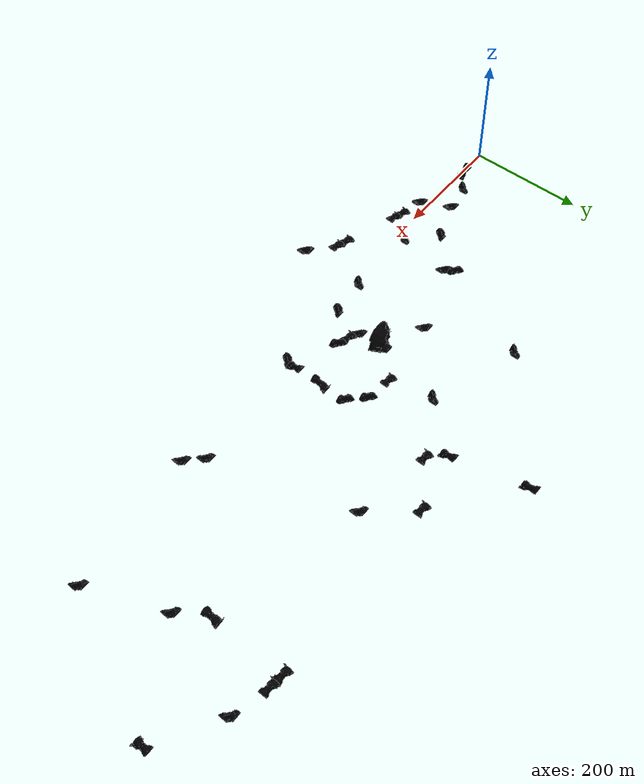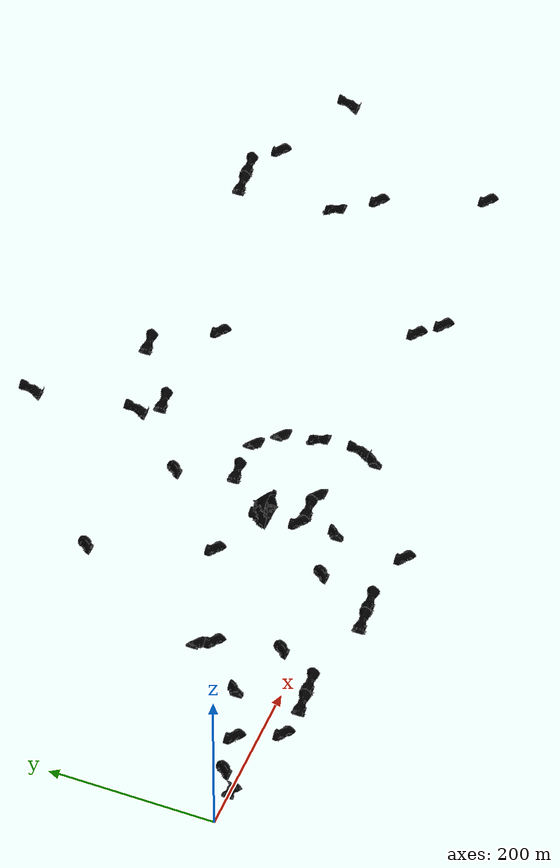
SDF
<sdf version="1.6">
 <world name="cave_circuit_practice_03">
  <plugin name="ros_interface_plugin" filename="librotors_gazebo_ros_interface_plugin.so"/>
  <physics name="1ms" type="ode">
   <max_step_size>0.004</max_step_size>
   <real_time_factor>1.0</real_time_factor>
  </physics>
  <scene>
   <ambient>150 150 150 255</ambient>
   <background>250 250 250 255</background>
   <grid>true</grid>
   <origin_visual>true</origin_visual>
  </scene>
  <include>
   <static>true</static>
   <name>tile_3</name>
   <pose>75 25 -10 0 -0 3.14159</pose>
   <uri>model://Cave Corner 02 Type B</uri>
  </include>
  <include>
   <static>true</static>
   <name>tile_4</name>
   <pose>50 0 -10 0 0 -1.5708</pose>
   <uri>model://Cave Elevation Lights Type B</uri>
  </include>
  <include>
   <static>true</static>
   <name>tile_13</name>
   <pose>200 -25 -10 0 -0 1.5708</pose>
   <uri>model://Cave Elevation Type B</uri>
  </include>
  <include>
   <static>true</static>
   <name>tile_15</name>
   <pose>200 50 -10 0 0 -0</pose>
   <uri>model://Cave Corner 02 Lights Type B</uri>
  </include>
  <include>
   <static>true</static>
   <name>tile_16</name>
   <pose>125 25 -10 0 0 -1.5708</pose>
   <uri>model://Cave Corner 02 Type B</uri>
  </include>
  <include>
   <static>true</static>
   <name>tile_19</name>
   <pose>150 -25 -10 0 0 -1.5708</pose>
   <uri>model://Cave Corner 02 Lights Type B</uri>
  </include>
  <include>
   <static>true</static>
   <name>tile_20</name>
   <pose>225 -25 0 0 -0 1.5708</pose>
   <uri>model://Cave Elevation Lights Type B</uri>
  </include>
  <include>
   <static>true</static>
   <name>tile_24</name>
   <pose>250 25 10 0 -0 3.14159</pose>
   <uri>model://Cave Corner 02 Lights Type B</uri>
  </include>
  <include>
   <static>true</static>
   <name>tile_34</name>
   <pose>325 -50 10 0 -0 1.5708</pose>
   <uri>model://Cave Elevation Type B</uri>
  </include>
  <include>
   <static>true</static>
   <name>tile_35</name>
   <pose>350 -50 20 0 -0 1.5708</pose>
   <uri>model://Cave Elevation Type B</uri>
  </include>
  <include>
   <static>true</static>
   <name>tile_40</name>
   <pose>250 100 -10 0 0 -1.5708</pose>
   <uri>model://Cave Corner 02 Lights Type B</uri>
  </include>
  <include>
   <static>true</static>
   <name>tile_41</name>
   <pose>250 125 -10 0 -0 1.5708</pose>
   <uri>model://Cave Corner 02 Type B</uri>
  </include>
  <include>
   <static>true</static>
   <name>tile_45</name>
   <pose>400 -75 50 0 0 -1.5708</pose>
   <uri>model://Cave Corner 02 Type B</uri>
  </include>
  <include>
   <static>true</static>
   <name>tile_49</name>
   <pose>375 25 10 0 -0 3.14159</pose>
   <uri>model://Cave Corner 02 Lights Type B</uri>
  </include>
  <include>
   <static>true</static>
   <name>tile_53</name>
   <pose>450 25 10 0 0 -0</pose>
   <uri>model://Cave Corner 02 Lights Type B</uri>
  </include>
  <include>
   <static>true</static>
   <name>tile_58</name>
   <pose>500 75 10 0 -0 1.57079</pose>
   <uri>model://Cave Corner 02 Lights Type B</uri>
  </include>
  <include>
   <static>true</static>
   <name>tile_59</name>
   <pose>475 75 0 0 -0 1.5708</pose>
   <uri>model://Cave Elevation Type B</uri>
  </include>
  <include>
   <static>true</static>
   <name>tile_63</name>
   <pose>450 75 0 0 0 -1.5708</pose>
   <uri>model://Cave Corner 02 Lights Type B</uri>
  </include>
  <include>
   <static>true</static>
   <name>tile_65</name>
   <pose>450 125 0 0 0 -1.5708</pose>
   <uri>model://Cave Cavern Split 02 Type B</uri>
  </include>
  <include>
   <static>true</static>
   <name>tile_71</name>
   <pose>500 175 0 0 -0 1.5708</pose>
   <uri>model://Cave Elevation Type B</uri>
  </include>
  <include>
   <static>true</static>
   <name>tile_74</name>
   <pose>575 25 10 0 -0 0</pose>
   <uri>model://Cave Corner 02 Type B</uri>
  </include>
  <include>
   <static>true</static>
   <name>tile_75</name>
   <pose>550 175 10 0 -0 1.5708</pose>
   <uri>model://Cave Corner 02 Type B</uri>
  </include>
  <include>
   <static>true</static>
   <name>tile_76</name>
   <pose>575 150 10 0 -0 1.5708</pose>
   <uri>model://Cave Corner 02 Type B</uri>
  </include>
  <include>
   <static>true</static>
   <name>tile_79</name>
   <pose>575 100 10 0 0 -0</pose>
   <uri>model://Cave Elevation Type B</uri>
  </include>
  <include>
   <static>true</static>
   <name>tile_80</name>
   <pose>575 50 10 0 -0 3.14159</pose>
   <uri>model://Cave Elevation Type B</uri>
  </include>
  <include>
   <static>true</static>
   <name>tile_81</name>
   <pose>375 150 0 0 0 -1.5708</pose>
   <uri>model://Cave Corner 02 Type B</uri>
  </include>
  <include>
   <static>true</static>
   <name>tile_88</name>
   <pose>475 250 0 0 -0 3.14159</pose>
   <uri>model://Cave Corner 02 Type B</uri>
  </include>
  <include>
   <static>true</static>
   <name>tile_97</name>
   <pose>325 300 0 0 -0 3.14159</pose>
   <uri>model://Cave Corner 02 Type B</uri>
  </include>
  <include>
   <static>true</static>
   <name>tile_127</name>
   <pose>550 325 0 0 -0 3.14159</pose>
   <uri>model://Cave Elevation Type B</uri>
  </include>
  <include>
   <static>true</static>
   <name>tile_133</name>
   <pose>525 450 10 0 -0 3.14159</pose>
   <uri>model://Cave Elevation Type B</uri>
  </include>
  <include>
   <static>true</static>
   <name>tile_142</name>
   <pose>575 300 0 0 -0 1.5708</pose>
   <uri>model://Cave Elevation Type B</uri>
  </include>
  <include>
   <static>true</static>
   <name>tile_160</name>
   <pose>775 50 20 0 0 -1.5708</pose>
   <uri>model://Cave Corner 02 Type B</uri>
  </include>
  <include>
   <static>true</static>
   <name>tile_162</name>
   <pose>800 25 20 0 0 -1.5708</pose>
   <uri>model://Cave Corner 02 Type B</uri>
  </include>
  <include>
   <static>true</static>
   <name>tile_190</name>
   <pose>975 175 20 0 0 -1.5708</pose>
   <uri>model://Cave Corner 02 Type B</uri>
  </include>
  <include>
   <static>true</static>
   <name>tile_200</name>
   <pose>1025 325 10 0 0 -1.5708</pose>
   <uri>model://Cave Corner 02 Type B</uri>
  </include>
  <include>
   <static>true</static>
   <name>tile_201</name>
   <pose>950 350 10 0 -0 1.5708</pose>
   <uri>model://Cave Elevation Type B</uri>
  </include>
  <include>
   <static>true</static>
   <name>tile_202</name>
   <pose>975 350 20 0 -0 1.5708</pose>
   <uri>model://Cave Elevation Type B</uri>
  </include>
  <include>
   <static>true</static>
   <name>tile_211</name>
   <pose>700 275 10 0 0 -1.5708</pose>
   <uri>model://Cave Corner 02 Type B</uri>
  </include>
  <include>
   <static>true</static>
   <name>tile_223</name>
   <pose>1025 50 20 0 0 -1.5708</pose>
   <uri>model://Cave Corner 02 Type B</uri>
  </include>
  <include>
   <static>true</static>
   <name>tile_234</name>
   <pose>1125 275 20 0 -0 3.14159</pose>
   <uri>model://Cave Elevation Type B</uri>
  </include>
  <include>
   <static>true</static>
   <name>tile_238</name>
   <pose>650 350 10 0 -0 1.5708</pose>
   <uri>model://Cave Elevation Type B</uri>
  </include>
  <include>
   <static>true</static>
   <name>tile_245</name>
   <pose>950 225 10 0 -0 0</pose>
   <uri>model://Cave Elevation Type B</uri>
  </include>
  <plugin name="ignition::gazebo" filename="dummy">
   <level name="level0">
    <ref>tile_8</ref>
    <pose>25 212.5 20 0 0 0</pose>
    <geometry><box><size>93.75 725 160</size></box></geometry>
    <buffer>12.5</buffer>
   </level>
   <level name="level1">
    <ref>tile_4</ref>
    <pose>50 212.5 20 0 0 0</pose>
    <geometry><box><size>93.75 725 160</size></box></geometry>
    <buffer>12.5</buffer>
   </level>
   <level name="level2">
    <ref>tile_2</ref>
    <ref>tile_3</ref>
    <pose>75 212.5 20 0 0 0</pose>
    <geometry><box><size>93.75 725 160</size></box></geometry>
    <buffer>12.5</buffer>
   </level>
   <level name="level3">
    <ref>helmet_1</ref>
    <pose>76.7324 212.5 20 0 0 0</pose>
    <geometry><box><size>93.75 725 160</size></box></geometry>
    <buffer>12.5</buffer>
   </level>
   <level name="level4">
    <ref>tile_1</ref>
    <ref>cave_cap_1</ref>
    <ref>tile_11</ref>
    <ref>cave_cap_32</ref>
    <pose>100 212.5 20 0 0 0</pose>
    <geometry><box><size>93.75 725 160</size></box></geometry>
    <buffer>12.5</buffer>
   </level>
   <level name="level5">
    <ref>tile_12</ref>
    <ref>tile_16</ref>
    <ref>tile_118</ref>
    <ref>cave_cap_33</ref>
    <pose>125 212.5 20 0 0 0</pose>
    <geometry><box><size>93.75 725 160</size></box></geometry>
    <buffer>12.5</buffer>
   </level>
   <level name="level6">
    <ref>tile_7</ref>
    <ref>tile_17</ref>
    <ref>tile_18</ref>
    <ref>tile_19</ref>
    <ref>tile_117</ref>
    <ref>tile_122</ref>
    <pose>150 212.5 20 0 0 0</pose>
    <geometry><box><size>93.75 725 160</size></box></geometry>
    <buffer>12.5</buffer>
   </level>
   <level name="level7">
    <ref>tile_6</ref>
    <ref>tile_9</ref>
    <ref>tile_108</ref>
    <ref>tile_116</ref>
    <pose>175 212.5 20 0 0 0</pose>
    <geometry><box><size>93.75 725 160</size></box></geometry>
    <buffer>12.5</buffer>
   </level>
   <level name="level8">
    <ref>helmet_2</ref>
    <pose>183.567 212.5 20 0 0 0</pose>
    <geometry><box><size>93.75 725 160</size></box></geometry>
    <buffer>12.5</buffer>
   </level>
   <level name="level9">
    <ref>tile_13</ref>
    <ref>tile_14</ref>
    <ref>tile_15</ref>
    <ref>cave_cap_4</ref>
    <ref>tile_107</ref>
    <ref>tile_109</ref>
    <ref>tile_110</ref>
    <ref>tile_112</ref>
    <pose>200 212.5 20 0 0 0</pose>
    <geometry><box><size>93.75 725 160</size></box></geometry>
    <buffer>12.5</buffer>
   </level>
   <level name="level10">
    <ref>tile_5</ref>
    <ref>tile_20</ref>
    <ref>cave_cap_2</ref>
    <ref>tile_42</ref>
    <ref>tile_106</ref>
    <ref>tile_113</ref>
    <ref>tile_114</ref>
    <ref>tile_115</ref>
    <ref>cave_cap_31</ref>
    <pose>225 212.5 20 0 0 0</pose>
    <geometry><box><size>93.75 725 160</size></box></geometry>
    <buffer>12.5</buffer>
   </level>
   <level name="level11">
    <ref>tile_21</ref>
    <ref>tile_22</ref>
    <ref>tile_23</ref>
    <ref>tile_24</ref>
    <ref>tile_33</ref>
    <ref>tile_40</ref>
    <ref>tile_41</ref>
    <ref>tile_105</ref>
    <ref>tile_111</ref>
    <ref>tile_124</ref>
    <pose>250 212.5 20 0 0 0</pose>
    <geometry><box><size>93.75 725 160</size></box></geometry>
    <buffer>12.5</buffer>
   </level>
   <level name="level12">
    <ref>rescue_randy_1</ref>
    <pose>258.444 212.5 20 0 0 0</pose>
    <geometry><box><size>93.75 725 160</size></box></geometry>
    <buffer>12.5</buffer>
   </level>
   <level name="level13">
    <ref>tile_10</ref>
    <ref>tile_25</ref>
    <ref>tile_26</ref>
    <ref>tile_27</ref>
    <ref>tile_31</ref>
    <ref>tile_36</ref>
    <ref>tile_39</ref>
    <ref>tile_104</ref>
    <ref>tile_120</ref>
    <pose>275 212.5 20 0 0 0</pose>
    <geometry><box><size>93.75 725 160</size></box></geometry>
    <buffer>12.5</buffer>
   </level>
   <level name="level14">
    <ref>rope_1</ref>
    <pose>285.375 212.5 20 0 0 0</pose>
    <geometry><box><size>93.75 725 160</size></box></geometry>
    <buffer>12.5</buffer>
   </level>
   <level name="level15">
    <ref>tile_28</ref>
    <ref>tile_29</ref>
    <ref>tile_30</ref>
    <ref>tile_37</ref>
    <ref>tile_121</ref>
    <ref>cave_cap_35</ref>
    <ref>phone_1</ref>
    <pose>300 212.5 20 0 0 0</pose>
    <geometry><box><size>93.75 725 160</size></box></geometry>
    <buffer>12.5</buffer>
   </level>
   <level name="level16">
    <ref>tile_32</ref>
    <ref>tile_34</ref>
    <ref>tile_38</ref>
    <ref>tile_94</ref>
    <ref>tile_95</ref>
    <ref>tile_96</ref>
    <ref>tile_97</ref>
    <ref>tile_119</ref>
    <pose>325 212.5 20 0 0 0</pose>
    <geometry><box><size>93.75 725 160</size></box></geometry>
    <buffer>12.5</buffer>
   </level>
   <level name="level17">
    <ref>rope_3</ref>
    <pose>332.624 212.5 20 0 0 0</pose>
    <geometry><box><size>93.75 725 160</size></box></geometry>
    <buffer>12.5</buffer>
   </level>
   <level name="level18">
    <ref>cave_cap_3</ref>
    <ref>tile_35</ref>
    <ref>tile_47</ref>
    <ref>tile_93</ref>
    <ref>tile_100</ref>
    <ref>tile_103</ref>
    <pose>350 212.5 20 0 0 0</pose>
    <geometry><box><size>93.75 725 160</size></box></geometry>
    <buffer>12.5</buffer>
   </level>
   <level name="level19">
    <ref>tile_43</ref>
    <ref>tile_48</ref>
    <ref>tile_49</ref>
    <ref>tile_81</ref>
    <ref>tile_82</ref>
    <ref>tile_83</ref>
    <ref>tile_98</ref>
    <ref>tile_99</ref>
    <ref>tile_123</ref>
    <ref>cave_cap_25</ref>
    <pose>375 212.5 20 0 0 0</pose>
    <geometry><box><size>93.75 725 160</size></box></geometry>
    <buffer>12.5</buffer>
   </level>
   <level name="level20">
    <ref>rope_2</ref>
    <pose>385.756 212.5 20 0 0 0</pose>
    <geometry><box><size>93.75 725 160</size></box></geometry>
    <buffer>12.5</buffer>
   </level>
   <level name="level21">
    <ref>tile_44</ref>
    <ref>tile_45</ref>
    <ref>tile_50</ref>
    <ref>tile_52</ref>
    <ref>tile_68</ref>
    <ref>tile_84</ref>
    <ref>tile_101</ref>
    <pose>400 212.5 20 0 0 0</pose>
    <geometry><box><size>93.75 725 160</size></box></geometry>
    <buffer>12.5</buffer>
   </level>
   <level name="level22">
    <ref>backpack_1</ref>
    <pose>422.954 212.5 20 0 0 0</pose>
    <geometry><box><size>93.75 725 160</size></box></geometry>
    <buffer>12.5</buffer>
   </level>
   <level name="level23">
    <ref>cave_cap_5</ref>
    <ref>tile_46</ref>
    <ref>tile_51</ref>
    <ref>tile_54</ref>
    <ref>cave_cap_7</ref>
    <ref>tile_67</ref>
    <ref>tile_85</ref>
    <ref>tile_102</ref>
    <ref>cave_cap_24</ref>
    <pose>425 212.5 20 0 0 0</pose>
    <geometry><box><size>93.75 725 160</size></box></geometry>
    <buffer>12.5</buffer>
   </level>
   <level name="level24">
    <ref>cave_cap_6</ref>
    <ref>tile_53</ref>
    <ref>tile_55</ref>
    <ref>tile_63</ref>
    <ref>tile_64</ref>
    <ref>tile_65</ref>
    <ref>tile_66</ref>
    <ref>tile_86</ref>
    <ref>tile_89</ref>
    <ref>tile_90</ref>
    <ref>tile_136</ref>
    <pose>450 212.5 20 0 0 0</pose>
    <geometry><box><size>93.75 725 160</size></box></geometry>
    <buffer>12.5</buffer>
   </level>
   <level name="level25">
    <ref>tile_56</ref>
    <ref>tile_59</ref>
    <ref>tile_69</ref>
    <ref>tile_70</ref>
    <ref>tile_87</ref>
    <ref>tile_88</ref>
    <ref>tile_135</ref>
    <ref>tile_240</ref>
    <ref>tile_241</ref>
    <ref>cave_cap_26</ref>
    <pose>475 212.5 20 0 0 0</pose>
    <geometry><box><size>93.75 725 160</size></box></geometry>
    <buffer>12.5</buffer>
   </level>
   <level name="level26">
    <ref>rescue_randy_2</ref>
    <pose>483.978 212.5 20 0 0 0</pose>
    <geometry><box><size>93.75 725 160</size></box></geometry>
    <buffer>12.5</buffer>
   </level>
   <level name="level27">
    <ref>tile_72</ref>
    <ref>cave_cap_9</ref>
    <ref>cave_cap_10</ref>
    <pose>487.5 212.5 20 0 0 0</pose>
    <geometry><box><size>93.75 725 160</size></box></geometry>
    <buffer>12.5</buffer>
   </level>
   <level name="level28">
    <ref>rope_4</ref>
    <pose>493.647 212.5 20 0 0 0</pose>
    <geometry><box><size>93.75 725 160</size></box></geometry>
    <buffer>12.5</buffer>
   </level>
   <level name="level29">
    <ref>tile_57</ref>
    <ref>tile_58</ref>
    <ref>tile_60</ref>
    <ref>tile_71</ref>
    <ref>tile_92</ref>
    <ref>tile_134</ref>
    <ref>tile_239</ref>
    <pose>500 212.5 20 0 0 0</pose>
    <geometry><box><size>93.75 725 160</size></box></geometry>
    <buffer>12.5</buffer>
   </level>
   <level name="level30">
    <ref>tile_61</ref>
    <ref>tile_73</ref>
    <ref>tile_91</ref>
    <ref>tile_129</ref>
    <ref>tile_130</ref>
    <ref>tile_131</ref>
    <ref>tile_132</ref>
    <ref>tile_133</ref>
    <ref>tile_237</ref>
    <pose>525 212.5 20 0 0 0</pose>
    <geometry><box><size>93.75 725 160</size></box></geometry>
    <buffer>12.5</buffer>
   </level>
   <level name="level31">
    <ref>tile_62</ref>
    <ref>tile_75</ref>
    <ref>tile_77</ref>
    <ref>tile_125</ref>
    <ref>tile_126</ref>
    <ref>tile_127</ref>
    <ref>tile_128</ref>
    <ref>tile_143</ref>
    <ref>cave_cap_23</ref>
    <ref>cave_cap_36</ref>
    <pose>550 212.5 20 0 0 0</pose>
    <geometry><box><size>93.75 725 160</size></box></geometry>
    <buffer>12.5</buffer>
   </level>
   <level name="level32">
    <ref>phone_2</ref>
    <pose>553.095 212.5 20 0 0 0</pose>
    <geometry><box><size>93.75 725 160</size></box></geometry>
    <buffer>12.5</buffer>
   </level>
   <level name="level33">
    <ref>backpack_2</ref>
    <pose>570.734 212.5 20 0 0 0</pose>
    <geometry><box><size>93.75 725 160</size></box></geometry>
    <buffer>12.5</buffer>
   </level>
   <level name="level34">
    <ref>tile_74</ref>
    <ref>tile_76</ref>
    <ref>tile_78</ref>
    <ref>tile_79</ref>
    <ref>tile_80</ref>
    <ref>tile_137</ref>
    <ref>tile_142</ref>
    <ref>tile_146</ref>
    <ref>tile_149</ref>
    <pose>575 212.5 20 0 0 0</pose>
    <geometry><box><size>93.75 725 160</size></box></geometry>
    <buffer>12.5</buffer>
   </level>
   <level name="level35">
    <ref>tile_138</ref>
    <ref>tile_144</ref>
    <ref>tile_148</ref>
    <ref>tile_153</ref>
    <pose>600 212.5 20 0 0 0</pose>
    <geometry><box><size>93.75 725 160</size></box></geometry>
    <buffer>12.5</buffer>
   </level>
   <level name="level36">
    <ref>tile_139</ref>
    <ref>tile_140</ref>
    <ref>tile_141</ref>
    <ref>tile_154</ref>
    <ref>cave_cap_19</ref>
    <pose>625 212.5 20 0 0 0</pose>
    <geometry><box><size>93.75 725 160</size></box></geometry>
    <buffer>12.5</buffer>
   </level>
   <level name="level37">
    <ref>cave_cap_8</ref>
    <ref>tile_145</ref>
    <ref>tile_150</ref>
    <ref>tile_151</ref>
    <ref>tile_156</ref>
    <ref>tile_230</ref>
    <ref>tile_238</ref>
    <pose>650 212.5 20 0 0 0</pose>
    <geometry><box><size>93.75 725 160</size></box></geometry>
    <buffer>12.5</buffer>
   </level>
   <level name="level38">
    <ref>helmet_3</ref>
    <pose>656.799 212.5 20 0 0 0</pose>
    <geometry><box><size>93.75 725 160</size></box></geometry>
    <buffer>12.5</buffer>
   </level>
   <level name="level39">
    <ref>tile_147</ref>
    <ref>tile_158</ref>
    <ref>cave_cap_22</ref>
    <pose>675 212.5 20 0 0 0</pose>
    <geometry><box><size>93.75 725 160</size></box></geometry>
    <buffer>12.5</buffer>
   </level>
   <level name="level40">
    <ref>tile_157</ref>
    <ref>tile_210</ref>
    <ref>tile_211</ref>
    <pose>700 212.5 20 0 0 0</pose>
    <geometry><box><size>93.75 725 160</size></box></geometry>
    <buffer>12.5</buffer>
   </level>
   <level name="level41">
    <ref>tile_152</ref>
    <ref>tile_214</ref>
    <ref>cave_cap_16</ref>
    <ref>cave_cap_18</ref>
    <pose>725 212.5 20 0 0 0</pose>
    <geometry><box><size>93.75 725 160</size></box></geometry>
    <buffer>12.5</buffer>
   </level>
   <level name="level42">
    <ref>backpack_3</ref>
    <pose>738.731 212.5 20 0 0 0</pose>
    <geometry><box><size>93.75 725 160</size></box></geometry>
    <buffer>12.5</buffer>
   </level>
   <level name="level43">
    <ref>tile_155</ref>
    <ref>tile_171</ref>
    <ref>tile_215</ref>
    <pose>750 212.5 20 0 0 0</pose>
    <geometry><box><size>93.75 725 160</size></box></geometry>
    <buffer>12.5</buffer>
   </level>
   <level name="level44">
    <ref>helmet_4</ref>
    <pose>772.515 212.5 20 0 0 0</pose>
    <geometry><box><size>93.75 725 160</size></box></geometry>
    <buffer>12.5</buffer>
   </level>
   <level name="level45">
    <ref>tile_159</ref>
    <ref>tile_160</ref>
    <ref>tile_172</ref>
    <ref>tile_212</ref>
    <pose>775 212.5 20 0 0 0</pose>
    <geometry><box><size>93.75 725 160</size></box></geometry>
    <buffer>12.5</buffer>
   </level>
   <level name="level46">
    <ref>rescue_randy_3</ref>
    <pose>799.346 212.5 20 0 0 0</pose>
    <geometry><box><size>93.75 725 160</size></box></geometry>
    <buffer>12.5</buffer>
   </level>
   <level name="level47">
    <ref>tile_161</ref>
    <ref>tile_162</ref>
    <ref>tile_165</ref>
    <ref>tile_166</ref>
    <ref>tile_168</ref>
    <ref>tile_169</ref>
    <ref>tile_170</ref>
    <ref>tile_180</ref>
    <ref>tile_213</ref>
    <pose>800 212.5 20 0 0 0</pose>
    <geometry><box><size>93.75 725 160</size></box></geometry>
    <buffer>12.5</buffer>
   </level>
   <level name="level48">
    <ref>tile_163</ref>
    <ref>tile_167</ref>
    <ref>tile_183</ref>
    <ref>tile_218</ref>
    <ref>cave_cap_15</ref>
    <ref>tile_246</ref>
    <pose>825 212.5 20 0 0 0</pose>
    <geometry><box><size>93.75 725 160</size></box></geometry>
    <buffer>12.5</buffer>
   </level>
   <level name="level49">
    <ref>tile_164</ref>
    <ref>tile_175</ref>
    <ref>tile_182</ref>
    <ref>tile_216</ref>
    <ref>tile_217</ref>
    <ref>tile_219</ref>
    <ref>cave_cap_14</ref>
    <ref>cave_cap_27</ref>
    <pose>850 212.5 20 0 0 0</pose>
    <geometry><box><size>93.75 725 160</size></box></geometry>
    <buffer>12.5</buffer>
   </level>
   <level name="level50">
    <ref>tile_173</ref>
    <ref>tile_184</ref>
    <ref>tile_199</ref>
    <ref>tile_203</ref>
    <ref>tile_220</ref>
    <ref>cave_cap_17</ref>
    <ref>cave_cap_28</ref>
    <pose>875 212.5 20 0 0 0</pose>
    <geometry><box><size>93.75 725 160</size></box></geometry>
    <buffer>12.5</buffer>
   </level>
   <level name="level51">
    <ref>tile_174</ref>
    <ref>tile_185</ref>
    <ref>tile_205</ref>
    <ref>tile_206</ref>
    <pose>900 212.5 20 0 0 0</pose>
    <geometry><box><size>93.75 725 160</size></box></geometry>
    <buffer>12.5</buffer>
   </level>
   <level name="level52">
    <ref>tile_176</ref>
    <ref>tile_178</ref>
    <ref>tile_179</ref>
    <ref>tile_181</ref>
    <ref>tile_196</ref>
    <ref>tile_198</ref>
    <ref>tile_207</ref>
    <pose>925 212.5 20 0 0 0</pose>
    <geometry><box><size>93.75 725 160</size></box></geometry>
    <buffer>12.5</buffer>
   </level>
   <level name="level53">
    <ref>tile_177</ref>
    <ref>tile_186</ref>
    <ref>tile_194</ref>
    <ref>tile_195</ref>
    <ref>cave_cap_11</ref>
    <ref>tile_201</ref>
    <ref>tile_209</ref>
    <ref>tile_245</ref>
    <pose>950 212.5 20 0 0 0</pose>
    <geometry><box><size>93.75 725 160</size></box></geometry>
    <buffer>12.5</buffer>
   </level>
   <level name="level54">
    <ref>rescue_randy_4</ref>
    <pose>952.107 212.5 20 0 0 0</pose>
    <geometry><box><size>93.75 725 160</size></box></geometry>
    <buffer>12.5</buffer>
   </level>
   <level name="level55">
    <ref>tile_187</ref>
    <ref>tile_189</ref>
    <ref>tile_190</ref>
    <ref>tile_202</ref>
    <ref>cave_cap_34</ref>
    <pose>975 212.5 20 0 0 0</pose>
    <geometry><box><size>93.75 725 160</size></box></geometry>
    <buffer>12.5</buffer>
   </level>
   <level name="level56">
    <ref>tile_188</ref>
    <ref>tile_191</ref>
    <ref>tile_208</ref>
    <pose>1000 212.5 20 0 0 0</pose>
    <geometry><box><size>93.75 725 160</size></box></geometry>
    <buffer>12.5</buffer>
   </level>
   <level name="level57">
    <ref>rope_5</ref>
    <pose>1000.72 212.5 20 0 0 0</pose>
    <geometry><box><size>93.75 725 160</size></box></geometry>
    <buffer>12.5</buffer>
   </level>
   <level name="level58">
    <ref>tile_193</ref>
    <ref>tile_197</ref>
    <ref>tile_200</ref>
    <ref>tile_221</ref>
    <ref>tile_223</ref>
    <ref>tile_225</ref>
    <ref>tile_226</ref>
    <pose>1025 212.5 20 0 0 0</pose>
    <geometry><box><size>93.75 725 160</size></box></geometry>
    <buffer>12.5</buffer>
   </level>
   <level name="level59">
    <ref>tile_192</ref>
    <ref>cave_cap_12</ref>
    <ref>tile_204</ref>
    <ref>tile_229</ref>
    <ref>cave_cap_29</ref>
    <pose>1050 212.5 20 0 0 0</pose>
    <geometry><box><size>93.75 725 160</size></box></geometry>
    <buffer>12.5</buffer>
   </level>
   <level name="level60">
    <ref>cave_cap_13</ref>
    <ref>tile_222</ref>
    <ref>tile_227</ref>
    <ref>tile_228</ref>
    <pose>1075 212.5 20 0 0 0</pose>
    <geometry><box><size>93.75 725 160</size></box></geometry>
    <buffer>12.5</buffer>
   </level>
   <level name="level61">
    <ref>phone_3</ref>
    <pose>1081.91 212.5 20 0 0 0</pose>
    <geometry><box><size>93.75 725 160</size></box></geometry>
    <buffer>12.5</buffer>
   </level>
   <level name="level62">
    <ref>tile_224</ref>
    <ref>cave_cap_20</ref>
    <pose>1100 212.5 20 0 0 0</pose>
    <geometry><box><size>93.75 725 160</size></box></geometry>
    <buffer>12.5</buffer>
   </level>
   <level name="level63">
    <ref>tile_231</ref>
    <ref>tile_233</ref>
    <ref>tile_234</ref>
    <ref>tile_235</ref>
    <ref>tile_236</ref>
    <ref>tile_242</ref>
    <pose>1125 212.5 20 0 0 0</pose>
    <geometry><box><size>93.75 725 160</size></box></geometry>
    <buffer>12.5</buffer>
   </level>
   <level name="level64">
    <ref>backpack_4</ref>
    <pose>1131.69 212.5 20 0 0 0</pose>
    <geometry><box><size>93.75 725 160</size></box></geometry>
    <buffer>12.5</buffer>
   </level>
   <level name="level65">
    <ref>tile_232</ref>
    <ref>tile_243</ref>
    <pose>1150 212.5 20 0 0 0</pose>
    <geometry><box><size>93.75 725 160</size></box></geometry>
    <buffer>12.5</buffer>
   </level>
   <level name="level66">
    <ref>cave_cap_21</ref>
    <ref>tile_244</ref>
    <pose>1175 212.5 20 0 0 0</pose>
    <geometry><box><size>93.75 725 160</size></box></geometry>
    <buffer>12.5</buffer>
   </level>
   <level name="level67">
    <ref>cave_cap_30</ref>
    <pose>1200 212.5 20 0 0 0</pose>
    <geometry><box><size>93.75 725 160</size></box></geometry>
    <buffer>12.5</buffer>
   </level>
   <level name="level68">
    <ref>tile_30</ref>
    <ref>tile_31</ref>
    <ref>tile_32</ref>
    <ref>tile_33</ref>
    <ref>cave_cap_2</ref>
    <ref>cave_cap_3</ref>
    <pose>612.5 -100 20 0 0 0</pose>
    <geometry><box><size>1275 93.75 160</size></box></geometry>
    <buffer>12.5</buffer>
   </level>
   <level name="level69">
    <ref>phone_1</ref>
    <pose>612.5 -98.4731 20 0 0 0</pose>
    <geometry><box><size>1275 93.75 160</size></box></geometry>
    <buffer>12.5</buffer>
   </level>
   <level name="level70">
    <ref>tile_29</ref>
    <ref>tile_45</ref>
    <ref>tile_46</ref>
    <ref>cave_cap_6</ref>
    <pose>612.5 -75 20 0 0 0</pose>
    <geometry><box><size>1275 93.75 160</size></box></geometry>
    <buffer>12.5</buffer>
   </level>
   <level name="level71">
    <ref>rope_2</ref>
    <pose>612.5 -50.2785 20 0 0 0</pose>
    <geometry><box><size>1275 93.75 160</size></box></geometry>
    <buffer>12.5</buffer>
   </level>
   <level name="level72">
    <ref>tile_22</ref>
    <ref>tile_27</ref>
    <ref>tile_28</ref>
    <ref>tile_34</ref>
    <ref>tile_35</ref>
    <ref>tile_43</ref>
    <ref>tile_44</ref>
    <ref>cave_cap_5</ref>
    <pose>612.5 -50 20 0 0 0</pose>
    <geometry><box><size>1275 93.75 160</size></box></geometry>
    <buffer>12.5</buffer>
   </level>
   <level name="level73">
    <ref>tile_6</ref>
    <ref>tile_13</ref>
    <ref>tile_19</ref>
    <ref>tile_20</ref>
    <ref>tile_21</ref>
    <ref>cave_cap_7</ref>
    <pose>612.5 -25 20 0 0 0</pose>
    <geometry><box><size>1275 93.75 160</size></box></geometry>
    <buffer>12.5</buffer>
   </level>
   <level name="level74">
    <ref>backpack_1</ref>
    <pose>612.5 -2.32283 20 0 0 0</pose>
    <geometry><box><size>1275 93.75 160</size></box></geometry>
    <buffer>12.5</buffer>
   </level>
   <level name="level75">
    <ref>tile_2</ref>
    <ref>tile_4</ref>
    <ref>tile_8</ref>
    <ref>cave_cap_1</ref>
    <ref>tile_18</ref>
    <ref>tile_23</ref>
    <ref>tile_36</ref>
    <ref>tile_37</ref>
    <ref>tile_38</ref>
    <ref>tile_47</ref>
    <ref>tile_48</ref>
    <ref>tile_50</ref>
    <ref>tile_54</ref>
    <pose>612.5 0 20 0 0 0</pose>
    <geometry><box><size>1275 93.75 160</size></box></geometry>
    <buffer>12.5</buffer>
   </level>
   <level name="level76">
    <ref>helmet_1</ref>
    <pose>612.5 22.5743 20 0 0 0</pose>
    <geometry><box><size>1275 93.75 160</size></box></geometry>
    <buffer>12.5</buffer>
   </level>
   <level name="level77">
    <ref>tile_1</ref>
    <ref>tile_3</ref>
    <ref>tile_16</ref>
    <ref>tile_17</ref>
    <ref>tile_24</ref>
    <ref>tile_25</ref>
    <ref>tile_49</ref>
    <ref>tile_51</ref>
    <ref>tile_52</ref>
    <ref>tile_53</ref>
    <ref>tile_60</ref>
    <ref>tile_61</ref>
    <ref>tile_62</ref>
    <ref>tile_74</ref>
    <ref>tile_162</ref>
    <ref>tile_163</ref>
    <ref>tile_164</ref>
    <ref>cave_cap_28</ref>
    <pose>612.5 25 20 0 0 0</pose>
    <geometry><box><size>1275 93.75 160</size></box></geometry>
    <buffer>12.5</buffer>
   </level>
   <level name="level78">
    <ref>rescue_randy_3</ref>
    <pose>612.5 32.4765 20 0 0 0</pose>
    <geometry><box><size>1275 93.75 160</size></box></geometry>
    <buffer>12.5</buffer>
   </level>
   <level name="level79">
    <ref>tile_7</ref>
    <ref>tile_9</ref>
    <ref>tile_10</ref>
    <ref>tile_11</ref>
    <ref>tile_12</ref>
    <ref>tile_15</ref>
    <ref>tile_55</ref>
    <ref>tile_56</ref>
    <ref>tile_57</ref>
    <ref>tile_80</ref>
    <ref>tile_160</ref>
    <ref>tile_161</ref>
    <ref>tile_223</ref>
    <ref>cave_cap_29</ref>
    <pose>612.5 50 20 0 0 0</pose>
    <geometry><box><size>1275 93.75 160</size></box></geometry>
    <buffer>12.5</buffer>
   </level>
   <level name="level80">
    <ref>tile_5</ref>
    <ref>tile_14</ref>
    <ref>tile_26</ref>
    <ref>tile_58</ref>
    <ref>tile_59</ref>
    <ref>tile_63</ref>
    <ref>cave_cap_9</ref>
    <ref>tile_124</ref>
    <ref>tile_149</ref>
    <ref>tile_150</ref>
    <ref>tile_152</ref>
    <ref>tile_153</ref>
    <ref>tile_154</ref>
    <ref>tile_155</ref>
    <ref>tile_157</ref>
    <ref>tile_158</ref>
    <ref>tile_159</ref>
    <ref>tile_165</ref>
    <ref>tile_167</ref>
    <ref>tile_226</ref>
    <ref>cave_cap_27</ref>
    <pose>612.5 75 20 0 0 0</pose>
    <geometry><box><size>1275 93.75 160</size></box></geometry>
    <buffer>12.5</buffer>
   </level>
   <level name="level81">
    <ref>rope_1</ref>
    <pose>612.5 75.9282 20 0 0 0</pose>
    <geometry><box><size>1275 93.75 160</size></box></geometry>
    <buffer>12.5</buffer>
   </level>
   <level name="level82">
    <ref>tile_39</ref>
    <ref>tile_40</ref>
    <ref>tile_64</ref>
    <ref>tile_72</ref>
    <ref>tile_79</ref>
    <ref>tile_156</ref>
    <ref>tile_168</ref>
    <ref>tile_225</ref>
    <pose>612.5 100 20 0 0 0</pose>
    <geometry><box><size>1275 93.75 160</size></box></geometry>
    <buffer>12.5</buffer>
   </level>
   <level name="level83">
    <ref>rescue_randy_2</ref>
    <pose>612.5 111.766 20 0 0 0</pose>
    <geometry><box><size>1275 93.75 160</size></box></geometry>
    <buffer>12.5</buffer>
   </level>
   <level name="level84">
    <ref>phone_3</ref>
    <pose>612.5 120.843 20 0 0 0</pose>
    <geometry><box><size>1275 93.75 160</size></box></geometry>
    <buffer>12.5</buffer>
   </level>
   <level name="level85">
    <ref>tile_41</ref>
    <ref>tile_42</ref>
    <ref>cave_cap_4</ref>
    <ref>tile_65</ref>
    <ref>cave_cap_10</ref>
    <ref>tile_78</ref>
    <ref>tile_151</ref>
    <ref>tile_180</ref>
    <ref>tile_181</ref>
    <ref>tile_182</ref>
    <ref>tile_183</ref>
    <ref>tile_184</ref>
    <ref>tile_185</ref>
    <ref>tile_186</ref>
    <ref>tile_187</ref>
    <ref>tile_188</ref>
    <ref>tile_221</ref>
    <ref>tile_228</ref>
    <ref>tile_229</ref>
    <ref>cave_cap_20</ref>
    <pose>612.5 125 20 0 0 0</pose>
    <geometry><box><size>1275 93.75 160</size></box></geometry>
    <buffer>12.5</buffer>
   </level>
   <level name="level86">
    <ref>helmet_3</ref>
    <pose>612.5 130.784 20 0 0 0</pose>
    <geometry><box><size>1275 93.75 160</size></box></geometry>
    <buffer>12.5</buffer>
   </level>
   <level name="level87">
    <ref>backpack_2</ref>
    <pose>612.5 144.756 20 0 0 0</pose>
    <geometry><box><size>1275 93.75 160</size></box></geometry>
    <buffer>12.5</buffer>
   </level>
   <level name="level88">
    <ref>tile_66</ref>
    <ref>tile_67</ref>
    <ref>tile_68</ref>
    <ref>tile_69</ref>
    <ref>tile_76</ref>
    <ref>tile_77</ref>
    <ref>tile_81</ref>
    <ref>tile_166</ref>
    <ref>tile_178</ref>
    <ref>cave_cap_11</ref>
    <ref>tile_227</ref>
    <ref>tile_230</ref>
    <pose>612.5 150 20 0 0 0</pose>
    <geometry><box><size>1275 93.75 160</size></box></geometry>
    <buffer>12.5</buffer>
   </level>
   <level name="level89">
    <ref>tile_70</ref>
    <ref>cave_cap_8</ref>
    <ref>tile_71</ref>
    <ref>tile_73</ref>
    <ref>tile_75</ref>
    <ref>tile_82</ref>
    <ref>tile_169</ref>
    <ref>tile_179</ref>
    <ref>tile_190</ref>
    <ref>tile_191</ref>
    <ref>tile_192</ref>
    <ref>tile_193</ref>
    <ref>tile_222</ref>
    <ref>tile_224</ref>
    <ref>tile_231</ref>
    <ref>tile_232</ref>
    <ref>cave_cap_21</ref>
    <pose>612.5 175 20 0 0 0</pose>
    <geometry><box><size>1275 93.75 160</size></box></geometry>
    <buffer>12.5</buffer>
   </level>
   <level name="level90">
    <ref>backpack_3</ref>
    <pose>612.5 195.563 20 0 0 0</pose>
    <geometry><box><size>1275 93.75 160</size></box></geometry>
    <buffer>12.5</buffer>
   </level>
   <level name="level91">
    <ref>tile_123</ref>
    <ref>tile_170</ref>
    <ref>tile_171</ref>
    <ref>tile_172</ref>
    <ref>tile_173</ref>
    <ref>tile_174</ref>
    <ref>tile_175</ref>
    <ref>tile_176</ref>
    <ref>tile_177</ref>
    <ref>tile_189</ref>
    <ref>cave_cap_18</ref>
    <ref>tile_236</ref>
    <ref>tile_246</ref>
    <pose>612.5 200 20 0 0 0</pose>
    <geometry><box><size>1275 93.75 160</size></box></geometry>
    <buffer>12.5</buffer>
   </level>
   <level name="level92">
    <ref>rescue_randy_4</ref>
    <pose>612.5 207.951 20 0 0 0</pose>
    <geometry><box><size>1275 93.75 160</size></box></geometry>
    <buffer>12.5</buffer>
   </level>
   <level name="level93">
    <ref>tile_83</ref>
    <ref>tile_84</ref>
    <ref>tile_85</ref>
    <ref>tile_86</ref>
    <ref>tile_87</ref>
    <ref>tile_93</ref>
    <ref>tile_94</ref>
    <ref>cave_cap_14</ref>
    <ref>tile_235</ref>
    <ref>tile_245</ref>
    <pose>612.5 225 20 0 0 0</pose>
    <geometry><box><size>1275 93.75 160</size></box></geometry>
    <buffer>12.5</buffer>
   </level>
   <level name="level94">
    <ref>tile_88</ref>
    <ref>tile_89</ref>
    <ref>tile_91</ref>
    <ref>tile_92</ref>
    <ref>tile_95</ref>
    <ref>tile_125</ref>
    <ref>tile_146</ref>
    <ref>tile_148</ref>
    <ref>tile_194</ref>
    <ref>tile_219</ref>
    <ref>cave_cap_19</ref>
    <ref>tile_233</ref>
    <pose>612.5 250 20 0 0 0</pose>
    <geometry><box><size>1275 93.75 160</size></box></geometry>
    <buffer>12.5</buffer>
   </level>
   <level name="level95">
    <ref>backpack_4</ref>
    <pose>612.5 253.501 20 0 0 0</pose>
    <geometry><box><size>1275 93.75 160</size></box></geometry>
    <buffer>12.5</buffer>
   </level>
   <level name="level96">
    <ref>tile_90</ref>
    <ref>tile_96</ref>
    <ref>tile_99</ref>
    <ref>tile_101</ref>
    <ref>tile_102</ref>
    <ref>tile_126</ref>
    <ref>tile_195</ref>
    <ref>tile_211</ref>
    <ref>tile_212</ref>
    <ref>tile_213</ref>
    <ref>tile_214</ref>
    <ref>tile_215</ref>
    <ref>tile_217</ref>
    <ref>tile_218</ref>
    <ref>tile_234</ref>
    <pose>612.5 275 20 0 0 0</pose>
    <geometry><box><size>1275 93.75 160</size></box></geometry>
    <buffer>12.5</buffer>
   </level>
   <level name="level97">
    <ref>helmet_4</ref>
    <pose>612.5 279.329 20 0 0 0</pose>
    <geometry><box><size>1275 93.75 160</size></box></geometry>
    <buffer>12.5</buffer>
   </level>
   <level name="level98">
    <ref>rope_3</ref>
    <pose>612.5 292.106 20 0 0 0</pose>
    <geometry><box><size>1275 93.75 160</size></box></geometry>
    <buffer>12.5</buffer>
   </level>
   <level name="level99">
    <ref>tile_97</ref>
    <ref>tile_98</ref>
    <ref>tile_100</ref>
    <ref>tile_140</ref>
    <ref>tile_142</ref>
    <ref>tile_143</ref>
    <ref>tile_144</ref>
    <ref>tile_145</ref>
    <ref>tile_147</ref>
    <ref>tile_196</ref>
    <ref>tile_203</ref>
    <ref>tile_206</ref>
    <ref>tile_209</ref>
    <ref>tile_210</ref>
    <ref>tile_216</ref>
    <ref>cave_cap_15</ref>
    <ref>cave_cap_16</ref>
    <ref>tile_242</ref>
    <ref>tile_243</ref>
    <ref>cave_cap_30</ref>
    <ref>tile_244</ref>
    <ref>cave_cap_34</ref>
    <pose>612.5 300 20 0 0 0</pose>
    <geometry><box><size>1275 93.75 160</size></box></geometry>
    <buffer>12.5</buffer>
   </level>
   <level name="level100">
    <ref>helmet_2</ref>
    <pose>612.5 321.704 20 0 0 0</pose>
    <geometry><box><size>1275 93.75 160</size></box></geometry>
    <buffer>12.5</buffer>
   </level>
   <level name="level101">
    <ref>phone_2</ref>
    <pose>612.5 322.572 20 0 0 0</pose>
    <geometry><box><size>1275 93.75 160</size></box></geometry>
    <buffer>12.5</buffer>
   </level>
   <level name="level102">
    <ref>tile_103</ref>
    <ref>tile_104</ref>
    <ref>tile_105</ref>
    <ref>tile_106</ref>
    <ref>tile_107</ref>
    <ref>tile_108</ref>
    <ref>tile_119</ref>
    <ref>tile_121</ref>
    <ref>tile_122</ref>
    <ref>tile_127</ref>
    <ref>tile_141</ref>
    <ref>cave_cap_13</ref>
    <ref>tile_200</ref>
    <ref>tile_204</ref>
    <ref>tile_207</ref>
    <ref>cave_cap_25</ref>
    <ref>cave_cap_33</ref>
    <pose>612.5 325 20 0 0 0</pose>
    <geometry><box><size>1275 93.75 160</size></box></geometry>
    <buffer>12.5</buffer>
   </level>
   <level name="level103">
    <ref>rope_5</ref>
    <pose>612.5 346.636 20 0 0 0</pose>
    <geometry><box><size>1275 93.75 160</size></box></geometry>
    <buffer>12.5</buffer>
   </level>
   <level name="level104">
    <ref>tile_109</ref>
    <ref>tile_128</ref>
    <ref>tile_129</ref>
    <ref>tile_134</ref>
    <ref>tile_135</ref>
    <ref>tile_136</ref>
    <ref>tile_137</ref>
    <ref>tile_138</ref>
    <ref>tile_139</ref>
    <ref>tile_197</ref>
    <ref>tile_198</ref>
    <ref>cave_cap_12</ref>
    <ref>tile_199</ref>
    <ref>tile_201</ref>
    <ref>tile_202</ref>
    <ref>tile_205</ref>
    <ref>tile_208</ref>
    <ref>tile_238</ref>
    <ref>cave_cap_22</ref>
    <ref>cave_cap_24</ref>
    <pose>612.5 350 20 0 0 0</pose>
    <geometry><box><size>1275 93.75 160</size></box></geometry>
    <buffer>12.5</buffer>
   </level>
   <level name="level105">
    <ref>tile_110</ref>
    <ref>tile_130</ref>
    <ref>tile_220</ref>
    <pose>612.5 375 20 0 0 0</pose>
    <geometry><box><size>1275 93.75 160</size></box></geometry>
    <buffer>12.5</buffer>
   </level>
   <level name="level106">
    <ref>rescue_randy_1</ref>
    <pose>612.5 394.08 20 0 0 0</pose>
    <geometry><box><size>1275 93.75 160</size></box></geometry>
    <buffer>12.5</buffer>
   </level>
   <level name="level107">
    <ref>tile_111</ref>
    <ref>tile_112</ref>
    <ref>tile_113</ref>
    <ref>tile_116</ref>
    <ref>tile_117</ref>
    <ref>tile_118</ref>
    <ref>tile_120</ref>
    <ref>tile_131</ref>
    <ref>cave_cap_17</ref>
    <ref>cave_cap_32</ref>
    <ref>cave_cap_35</ref>
    <pose>612.5 400 20 0 0 0</pose>
    <geometry><box><size>1275 93.75 160</size></box></geometry>
    <buffer>12.5</buffer>
   </level>
   <level name="level108">
    <ref>tile_114</ref>
    <ref>tile_132</ref>
    <ref>cave_cap_36</ref>
    <pose>612.5 425 20 0 0 0</pose>
    <geometry><box><size>1275 93.75 160</size></box></geometry>
    <buffer>12.5</buffer>
   </level>
   <level name="level109">
    <ref>tile_115</ref>
    <ref>tile_133</ref>
    <pose>612.5 450 20 0 0 0</pose>
    <geometry><box><size>1275 93.75 160</size></box></geometry>
    <buffer>12.5</buffer>
   </level>
   <level name="level110">
    <ref>tile_237</ref>
    <ref>cave_cap_23</ref>
    <ref>tile_239</ref>
    <ref>tile_240</ref>
    <ref>cave_cap_31</ref>
    <pose>612.5 475 20 0 0 0</pose>
    <geometry><box><size>1275 93.75 160</size></box></geometry>
    <buffer>12.5</buffer>
   </level>
   <level name="level111">
    <ref>rope_4</ref>
    <pose>612.5 478.193 20 0 0 0</pose>
    <geometry><box><size>1275 93.75 160</size></box></geometry>
    <buffer>12.5</buffer>
   </level>
   <level name="level112">
    <ref>tile_241</ref>
    <pose>612.5 500 20 0 0 0</pose>
    <geometry><box><size>1275 93.75 160</size></box></geometry>
    <buffer>12.5</buffer>
   </level>
   <level name="level113">
    <ref>cave_cap_26</ref>
    <pose>612.5 525 20 0 0 0</pose>
    <geometry><box><size>1275 93.75 160</size></box></geometry>
    <buffer>12.5</buffer>
   </level>
  </plugin>
 </world>
</sdf>

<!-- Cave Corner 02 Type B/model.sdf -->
<sdf version="1.6">
  <model name="Cave Corner 02 Type B">
    <static>true</static>
    <link name="base_link">
      <collision name="collision">
        <pose>0 0 0 0 0 0</pose>
        <geometry>
          <mesh>
            <uri>model://cave_corner_02/meshes/cavecorner02.dae</uri>
            <scale>1.005 1.005 1.0</scale>
          </mesh>
        </geometry>
      </collision>
      <visual name="CaveWall_visual">
        <geometry>
          <mesh>
            <uri>model://cave_corner_02/meshes/cavecorner02.dae</uri>
            <submesh>
              <name>CaveWall</name>
              <center>false</center>
            </submesh>
            <scale>1.005 1.005 1.0</scale>
          </mesh>
        </geometry>
        <material>
          <diffuse>0 0 0 1</diffuse>
          <specular>0 0 0 1</specular>
          <pbr>
            <metal>
              <albedo_map>model://cave_corner_02/materials/textures/CaveWall_Albedo.png</albedo_map>
              <normal_map>model://cave_corner_02/materials/textures/CaveWall_Normal.png</normal_map>
              <roughness_map>model://cave_corner_02/materials/textures/CaveWall_Roughness.png</roughness_map>
            </metal>
          </pbr>

          <script>
            <uri>model://cave_corner_02/materials/scripts/</uri>
            <uri>model://cave_corner_02/materials/textures/</uri>
            <name>CaveTile/CaveWall_Diffuse</name>
          </script>
        </material>
      </visual>
      <visual name="StriatedRock_visual">
        <geometry>
          <mesh>
            <uri>model://cave_corner_02/meshes/cavecorner02.dae</uri>
            <submesh>
              <name>StriatedRock</name>
              <center>false</center>
            </submesh>
            <scale>1.005 1.005 1.0</scale>
          </mesh>
        </geometry>
        <material>
          <diffuse>0 0 0 1</diffuse>
          <specular>0 0 0 1</specular>
          <pbr>
            <metal>
              <albedo_map>model://cave_corner_02/materials/textures/StriatedRock_Albedo.png</albedo_map>
              <normal_map>model://cave_corner_02/materials/textures/StriatedRock_Normal.png</normal_map>
              <roughness_map>model://cave_corner_02/materials/textures/StriatedRock_Roughness.png</roughness_map>
            </metal>
          </pbr>

          <script>
            <uri>model://cave_corner_02/materials/scripts/</uri>
            <uri>model://cave_corner_02/materials/textures/</uri>
            <name>CaveTile/StriatedRock_Diffuse</name>
          </script>
        </material>
      </visual>
      <visual name="RockPile_visual">
        <geometry>
          <mesh>
            <uri>model://cave_corner_02/meshes/cavecorner02.dae</uri>
            <submesh>
              <name>RockPile</name>
              <center>false</center>
            </submesh>
            <scale>1.005 1.005 1.0</scale>
          </mesh>
        </geometry>
        <material>
          <diffuse>0 0 0 1</diffuse>
          <specular>0 0 0 1</specular>
          <pbr>
            <metal>
              <albedo_map>model://cave_corner_02/materials/textures/RockPile_Albedo.png</albedo_map>
              <normal_map>model://cave_corner_02/materials/textures/RockPile_Normal.png</normal_map>
              <roughness_map>model://cave_corner_02/materials/textures/RockPile_Roughness.png</roughness_map>
            </metal>
          </pbr>

          <script>
            <uri>model://cave_corner_02/materials/scripts/</uri>
            <uri>model://cave_corner_02/materials/textures/</uri>
            <name>CaveTile/RockPile_Diffuse</name>
          </script>
        </material>
      </visual>
    </link>
  </model>
</sdf>

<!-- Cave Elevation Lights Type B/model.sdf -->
<sdf version="1.6">
  <model name="Cave Elevation Lights Type B">
    <static>true</static>
    <include>
      <name>cave_elevation</name>
      <uri>model://Cave Elevation Type B</uri>
    </include>

    <link name="light1">
      <light name="spot_light1" type="spot">
        <pose>0 -8 17.5 0 0 0</pose>
        <diffuse>0 0 0 1</diffuse>
        <specular>0 0 0 1</specular>
        <attenuation>
          <range>20</range>
          <linear>0.2</linear>
          <constant>1.0</constant>
          <quadratic>0.01</quadratic>
        </attenuation>
        <spot>
          <inner_angle>2.0</inner_angle>
          <outer_angle>3.1</outer_angle>
          <falloff>1.2</falloff>
        </spot>
        <cast_shadows>false</cast_shadows>
      </light>

      <light name="spot_light2" type="spot">
        <pose>0 2 13.5 0 0 0</pose>
        <diffuse>0 0 0 1</diffuse>
        <specular>0 0 0 1</specular>
        <attenuation>
          <range>20</range>
          <linear>0.2</linear>
          <constant>1.0</constant>
          <quadratic>0.01</quadratic>
        </attenuation>
        <spot>
          <inner_angle>2.0</inner_angle>
          <outer_angle>3.1</outer_angle>
          <falloff>1.2</falloff>
        </spot>
        <cast_shadows>false</cast_shadows>
      </light>

      <light name="spot_light3" type="spot">
        <pose>0 12 9 0 0 0</pose>
        <diffuse>0 0 0 1</diffuse>
        <specular>0 0 0 1</specular>
        <attenuation>
          <range>20</range>
          <linear>0.2</linear>
          <constant>1.0</constant>
          <quadratic>0.01</quadratic>
        </attenuation>
        <spot>
          <inner_angle>2.0</inner_angle>
          <outer_angle>3.1</outer_angle>
          <falloff>1.2</falloff>
        </spot>
        <cast_shadows>false</cast_shadows>
      </light>
    </link>
  </model>
</sdf>

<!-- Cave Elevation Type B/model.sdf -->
<sdf version="1.6">
  <model name="Cave Elevation Type B">
    <static>true</static>
    <link name="base_link">
      <collision name="collision">
        <pose>0 0 0 0 0 0</pose>
        <geometry>
          <mesh>
            <uri>model://Cave Elevation Type B/meshes/caveelevation.dae</uri>
            <scale>1.0 1.0 1.0</scale>
          </mesh>
        </geometry>
      </collision>
      <visual name="CaveWall_visual">
        <geometry>
          <mesh>
            <uri>model://Cave Elevation Type B/meshes/caveelevation.dae</uri>
            <submesh>
              <name>CaveWall</name>
              <center>false</center>
            </submesh>
          </mesh>
        </geometry>
        <material>
          <diffuse>0 0 0 1</diffuse>
          <specular>0 0 0 1</specular>
          <pbr>
            <metal>
              <albedo_map>model://Cave Elevation Type B/materials/textures/CaveWall_Albedo.png</albedo_map>
              <normal_map>model://Cave Elevation Type B/materials/textures/CaveWall_Normal.png</normal_map>
              <roughness_map>model://Cave Elevation Type B/materials/textures/CaveWall_Roughness.png</roughness_map>
            </metal>
          </pbr>

          <script>
            <uri>model://Cave Elevation Type B/materials/scripts/</uri>
            <uri>model://Cave Elevation Type B/materials/textures/</uri>
            <name>CaveTile/CaveWall_Diffuse</name>
          </script>
        </material>
      </visual>
      <visual name="RockPile_visual">
        <geometry>
          <mesh>
            <uri>model://Cave Elevation Type B/meshes/caveelevation.dae</uri>
            <submesh>
              <name>RockPile</name>
              <center>false</center>
            </submesh>
          </mesh>
        </geometry>
        <material>
          <diffuse>0 0 0 1</diffuse>
          <specular>0 0 0 1</specular>
          <pbr>
            <metal>
              <albedo_map>model://Cave Elevation Type B/materials/textures/RockPile_Albedo.png</albedo_map>
              <normal_map>model://Cave Elevation Type B/materials/textures/RockPile_Normal.png</normal_map>
              <roughness_map>model://Cave Elevation Type B/materials/textures/RockPile_Roughness.png</roughness_map>
            </metal>
          </pbr>

          <script>
            <uri>model://Cave Elevation Type B/materials/scripts/</uri>
            <uri>model://Cave Elevation Type B/materials/textures/</uri>
            <name>CaveTile/RockPile_Diffuse</name>
          </script>
        </material>
      </visual>
      <visual name="StriatedRock_visual">
        <geometry>
          <mesh>
            <uri>model://Cave Elevation Type B/meshes/caveelevation.dae</uri>
            <submesh>
              <name>StriatedRock</name>
              <center>false</center>
            </submesh>
          </mesh>
        </geometry>
        <material>
          <diffuse>0 0 0 1</diffuse>
          <specular>0 0 0 1</specular>
          <pbr>
            <metal>
              <albedo_map>model://Cave Elevation Type B/materials/textures/StriatedRock_Albedo.png</albedo_map>
              <normal_map>model://Cave Elevation Type B/materials/textures/StriatedRock_Normal.png</normal_map>
              <roughness_map>model://Cave Elevation Type B/materials/textures/StriatedRock_Roughness.png</roughness_map>
            </metal>
          </pbr>

          <script>
            <uri>model://Cave Elevation Type B/materials/scripts/</uri>
            <uri>model://Cave Elevation Type B/materials/textures/</uri>
            <name>CaveTile/StriatedRock_Diffuse</name>
          </script>
        </material>
      </visual>
    </link>

    <plugin filename="libignition-gazebo-performer-detector-system.so" name="ignition::gazebo::systems::PerformerDetector">
      <topic>/subt_performer_detector</topic>
      <pose>0 0 10 0 0 0</pose>
      <geometry>
        <box>
          <size>20 30 20</size>
        </box>
      </geometry>
      <header_data>
        <key>type</key>
        <value>elevation</value>
      </header_data>
    </plugin>
  </model>
</sdf>

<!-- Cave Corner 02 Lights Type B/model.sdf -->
<sdf version="1.6">
  <model name="Cave Corner 02 Lights Type B">
    <include>
      <name>cave_corner_02</name>
      <uri>model://Cave Corner 02 Type B</uri>
    </include>
    <static>true</static>
    <link name="lights">
      <light name="spot_light1" type="spot">
        <pose>-2 6.0 3.5 0 0 0</pose>
        <diffuse>0 0 0 1</diffuse>
        <specular>0 0 0 1</specular>
        <attenuation>
          <range>20</range>
          <linear>0.2</linear>
          <constant>0.5</constant>
          <quadratic>0.02</quadratic>
        </attenuation>
        <spot>
          <inner_angle>2.0</inner_angle>
          <outer_angle>3.1</outer_angle>
          <falloff>1.0</falloff>
        </spot>
        <cast_shadows>false</cast_shadows>
      </light>

      <light name="spot_light2" type="spot">
        <pose>-6.5 -.25 4.5 0 0 0</pose>
        <diffuse>0 0 0 1</diffuse>
        <specular>0 0 0 1</specular>
        <attenuation>
          <range>20</range>
          <linear>0.2</linear>
          <constant>0.5</constant>
          <quadratic>0.02</quadratic>
        </attenuation>
        <spot>
          <inner_angle>2.0</inner_angle>
          <outer_angle>3.1</outer_angle>
          <falloff>1.0</falloff>
        </spot>
        <cast_shadows>false</cast_shadows>
      </light>
    </link>
  </model>
</sdf>

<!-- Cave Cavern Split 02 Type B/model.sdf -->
<sdf version="1.6">
  <model name="Cave Cavern Split 02 Type B">
    <static>true</static>
    <link name="base_link">
      <collision name="collision">
        <pose>0 0 0 0 0 0</pose>
        <geometry>
          <mesh>
            <uri>model://cave_Cave Cavern Split 02 Type B/meshes/cavernsplit02.dae</uri>
            <scale>1.0 1.0 1.0</scale>
          </mesh>
        </geometry>
      </collision>
      <visual name="StriatedRock_visual">
        <geometry>
          <mesh>
            <uri>model://cave_Cave Cavern Split 02 Type B/meshes/cavernsplit02.dae</uri>
            <submesh>
              <name>StriatedRock</name>
              <center>false</center>
            </submesh>
          </mesh>
        </geometry>
        <material>
          <diffuse>0 0 0 1</diffuse>
          <specular>0 0 0 1</specular>
          <pbr>
            <metal>
              <albedo_map>model://cave_Cave Cavern Split 02 Type B/materials/textures/StriatedRock_Albedo.png</albedo_map>
              <normal_map>model://cave_Cave Cavern Split 02 Type B/materials/textures/StriatedRock_Normal.png</normal_map>
              <roughness_map>model://cave_Cave Cavern Split 02 Type B/materials/textures/StriatedRock_Roughness.png</roughness_map>
            </metal>
          </pbr>

          <script>
            <uri>model://cave_Cave Cavern Split 02 Type B/materials/scripts/</uri>
            <uri>model://cave_Cave Cavern Split 02 Type B/materials/textures/</uri>
            <name>CaveTile/StriatedRock_Diffuse</name>
          </script>
        </material>
      </visual>
      <visual name="RockPile_visual">
        <geometry>
          <mesh>
            <uri>model://cave_Cave Cavern Split 02 Type B/meshes/cavernsplit02.dae</uri>
            <submesh>
              <name>RockPile</name>
              <center>false</center>
            </submesh>
          </mesh>
        </geometry>
        <material>
          <diffuse>0 0 0 1</diffuse>
          <specular>0 0 0 1</specular>
          <pbr>
            <metal>
              <albedo_map>model://cave_Cave Cavern Split 02 Type B/materials/textures/RockPile_Albedo.png</albedo_map>
              <normal_map>model://cave_Cave Cavern Split 02 Type B/materials/textures/RockPile_Normal.png</normal_map>
              <roughness_map>model://cave_Cave Cavern Split 02 Type B/materials/textures/RockPile_Roughness.png</roughness_map>
            </metal>
          </pbr>

          <script>
            <uri>model://cave_Cave Cavern Split 02 Type B/materials/scripts/</uri>
            <uri>model://cave_Cave Cavern Split 02 Type B/materials/textures/</uri>
            <name>CaveTile/RockPile_Diffuse</name>
          </script>
        </material>
      </visual>
      <visual name="CaveWall_visual">
        <geometry>
          <mesh>
            <uri>model://cave_Cave Cavern Split 02 Type B/meshes/cavernsplit02.dae</uri>
            <submesh>
              <name>CaveWall_ncl1_1</name>
              <center>false</center>
            </submesh>
          </mesh>
        </geometry>
        <material>
          <diffuse>0 0 0 1</diffuse>
          <specular>0 0 0 1</specular>
          <pbr>
            <metal>
              <albedo_map>model://cave_Cave Cavern Split 02 Type B/materials/textures/CaveWall_Albedo.png</albedo_map>
              <normal_map>model://cave_Cave Cavern Split 02 Type B/materials/textures/CaveWall_Normal.png</normal_map>
              <roughness_map>model://cave_Cave Cavern Split 02 Type B/materials/textures/CaveWall_Roughness.png</roughness_map>
            </metal>
          </pbr>

          <script>
            <uri>model://cave_Cave Cavern Split 02 Type B/materials/scripts/</uri>
            <uri>model://cave_Cave Cavern Split 02 Type B/materials/textures/</uri>
            <name>CaveTile/CaveWall_Diffuse</name>
          </script>
        </material>
      </visual>
    </link>
  </model>
</sdf>
